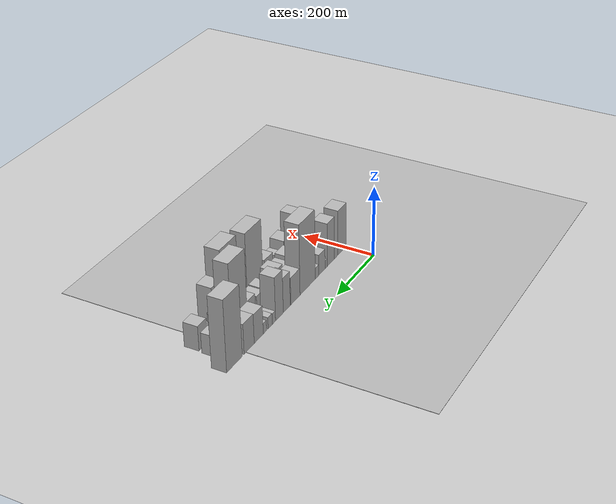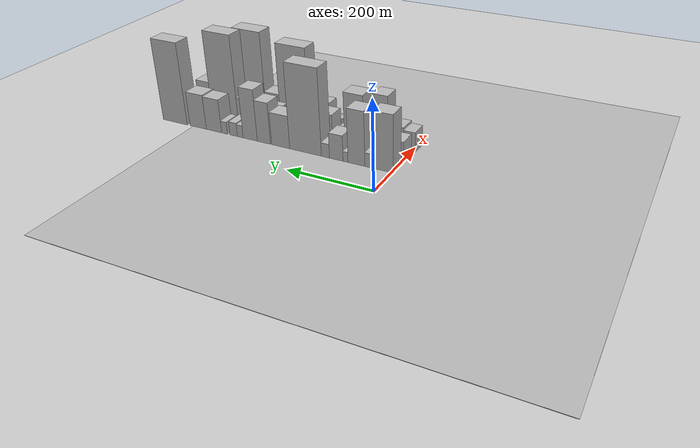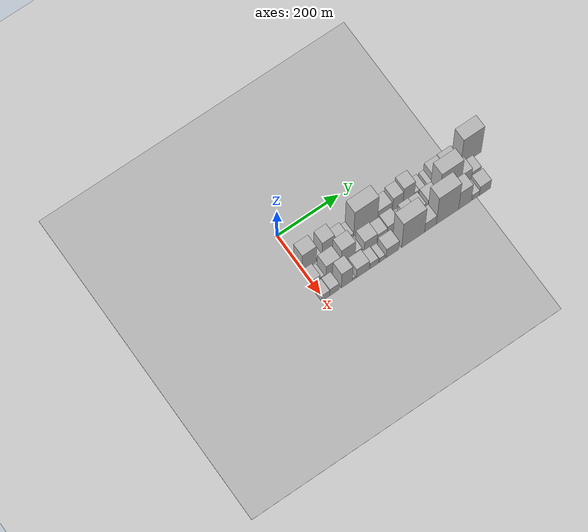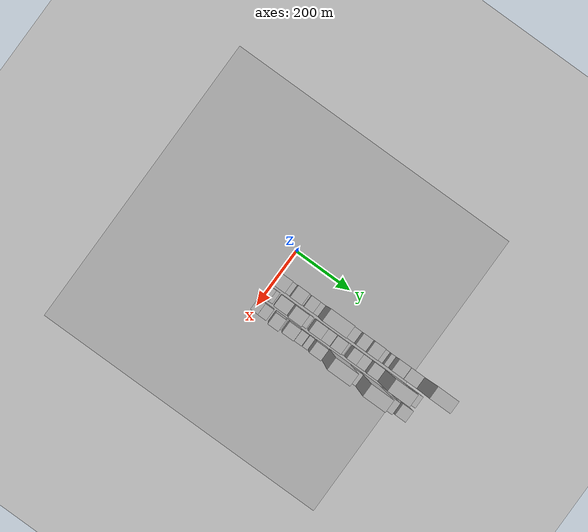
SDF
<sdf version="1.6">
 <world name="default">
  <include><name>ground_plane_1</name><uri>model://HANNAS_ground_plane</uri></include>
  <include>
   <name>ground_plane_2</name>
   <uri>model://HANNAS_ground_plane</uri>
   <pose>100 0 0  0 0 0</pose>
  </include>
  <model name="building_15">
   <static>1</static>
   <pose>100.0000 19.6133 0 0.000000 0.000000 0.000000</pose>
   <link name="link">
    <pose>0 0 66.00 0 0 0</pose>
    <collision name="collision"><geometry><box><size>40.0000 46.2009 132.0000</size></box></geometry></collision>
    <visual name="visual">
     <cast_shadows>0</cast_shadows>
     <geometry><box><size>40.0000 46.2009 132.0000</size></box></geometry>
     <material>
      <script>
       <uri>model://HANNAS_wall/materials/scripts</uri>
       <uri>model://HANNAS_wall/materials/textures</uri>
       <name>vrc/HANNAS_wall</name>
      </script>
     </material>
    </visual>
   </link>
  </model>
  <model name="building_16">
   <static>1</static>
   <pose>100.0000 51.9696 0 0.000000 0.000000 0.000000</pose>
   <link name="link">
    <pose>0 0 16.50 0 0 0</pose>
    <collision name="collision"><geometry><box><size>40.0000 18.5116 33.0000</size></box></geometry></collision>
    <visual name="visual">
     <cast_shadows>0</cast_shadows>
     <geometry><box><size>40.0000 18.5116 33.0000</size></box></geometry>
     <material>
      <script>
       <uri>model://HANNAS_wall/materials/scripts</uri>
       <uri>model://HANNAS_wall/materials/textures</uri>
       <name>vrc/HANNAS_wall</name>
      </script>
     </material>
    </visual>
   </link>
  </model>
  <model name="building_17">
   <static>1</static>
   <pose>100.0000 80.9882 0 0.000000 0.000000 0.000000</pose>
   <link name="link">
    <pose>0 0 63.00 0 0 0</pose>
    <collision name="collision"><geometry><box><size>40.0000 39.5256 126.0000</size></box></geometry></collision>
    <visual name="visual">
     <cast_shadows>0</cast_shadows>
     <geometry><box><size>40.0000 39.5256 126.0000</size></box></geometry>
     <material>
      <script>
       <uri>model://HANNAS_wall/materials/scripts</uri>
       <uri>model://HANNAS_wall/materials/textures</uri>
       <name>vrc/HANNAS_wall</name>
      </script>
     </material>
    </visual>
   </link>
  </model>
  <model name="building_18">
   <static>1</static>
   <pose>100.0000 106.6039 0 0.000000 0.000000 0.000000</pose>
   <link name="link">
    <pose>0 0 12.00 0 0 0</pose>
    <collision name="collision"><geometry><box><size>40.0000 11.7060 24.0000</size></box></geometry></collision>
    <visual name="visual">
     <cast_shadows>0</cast_shadows>
     <geometry><box><size>40.0000 11.7060 24.0000</size></box></geometry>
     <material>
      <script>
       <uri>model://HANNAS_wall/materials/scripts</uri>
       <uri>model://HANNAS_wall/materials/textures</uri>
       <name>vrc/HANNAS_wall</name>
      </script>
     </material>
    </visual>
   </link>
  </model>
  <model name="building_19">
   <static>1</static>
   <pose>100.0000 128.7293 0 0.000000 0.000000 0.000000</pose>
   <link name="link">
    <pose>0 0 30.00 0 0 0</pose>
    <collision name="collision"><geometry><box><size>40.0000 32.5449 60.0000</size></box></geometry></collision>
    <visual name="visual">
     <cast_shadows>0</cast_shadows>
     <geometry><box><size>40.0000 32.5449 60.0000</size></box></geometry>
     <material>
      <script>
       <uri>model://HANNAS_wall/materials/scripts</uri>
       <uri>model://HANNAS_wall/materials/textures</uri>
       <name>vrc/HANNAS_wall</name>
      </script>
     </material>
    </visual>
   </link>
  </model>
  <model name="building_20">
   <static>1</static>
   <pose>100.0000 154.8038 0 0.000000 0.000000 0.000000</pose>
   <link name="link">
    <pose>0 0 16.50 0 0 0</pose>
    <collision name="collision"><geometry><box><size>40.0000 19.6040 33.0000</size></box></geometry></collision>
    <visual name="visual">
     <cast_shadows>0</cast_shadows>
     <geometry><box><size>40.0000 19.6040 33.0000</size></box></geometry>
     <material>
      <script>
       <uri>model://HANNAS_wall/materials/scripts</uri>
       <uri>model://HANNAS_wall/materials/textures</uri>
       <name>vrc/HANNAS_wall</name>
      </script>
     </material>
    </visual>
   </link>
  </model>
  <model name="building_21">
   <static>1</static>
   <pose>100.0000 203.8623 0 0.000000 0.000000 0.000000</pose>
   <link name="link">
    <pose>0 0 100.50 0 0 0</pose>
    <collision name="collision"><geometry><box><size>40.0000 78.5130 201.0000</size></box></geometry></collision>
    <visual name="visual">
     <cast_shadows>0</cast_shadows>
     <geometry><box><size>40.0000 78.5130 201.0000</size></box></geometry>
     <material>
      <script>
       <uri>model://HANNAS_wall/materials/scripts</uri>
       <uri>model://HANNAS_wall/materials/textures</uri>
       <name>vrc/HANNAS_wall</name>
      </script>
     </material>
    </visual>
   </link>
  </model>
  <model name="building_22">
   <static>1</static>
   <pose>100.0000 266.0745 0 0.000000 0.000000 0.000000</pose>
   <link name="link">
    <pose>0 0 39.00 0 0 0</pose>
    <collision name="collision"><geometry><box><size>40.0000 45.9114 78.0000</size></box></geometry></collision>
    <visual name="visual">
     <cast_shadows>0</cast_shadows>
     <geometry><box><size>40.0000 45.9114 78.0000</size></box></geometry>
     <material>
      <script>
       <uri>model://HANNAS_wall/materials/scripts</uri>
       <uri>model://HANNAS_wall/materials/textures</uri>
       <name>vrc/HANNAS_wall</name>
      </script>
     </material>
    </visual>
   </link>
  </model>
  <model name="building_23">
   <static>1</static>
   <pose>100.0000 309.0728 0 0.000000 0.000000 0.000000</pose>
   <link name="link">
    <pose>0 0 49.50 0 0 0</pose>
    <collision name="collision"><geometry><box><size>40.0000 34.0853 99.0000</size></box></geometry></collision>
    <visual name="visual">
     <cast_shadows>0</cast_shadows>
     <geometry><box><size>40.0000 34.0853 99.0000</size></box></geometry>
     <material>
      <script>
       <uri>model://HANNAS_wall/materials/scripts</uri>
       <uri>model://HANNAS_wall/materials/textures</uri>
       <name>vrc/HANNAS_wall</name>
      </script>
     </material>
    </visual>
   </link>
  </model>
  <model name="building_24">
   <static>1</static>
   <pose>100.0000 344.8599 0 0.000000 0.000000 0.000000</pose>
   <link name="link">
    <pose>0 0 61.50 0 0 0</pose>
    <collision name="collision"><geometry><box><size>40.0000 37.4889 123.0000</size></box></geometry></collision>
    <visual name="visual">
     <cast_shadows>0</cast_shadows>
     <geometry><box><size>40.0000 37.4889 123.0000</size></box></geometry>
     <material>
      <script>
       <uri>model://HANNAS_wall/materials/scripts</uri>
       <uri>model://HANNAS_wall/materials/textures</uri>
       <name>vrc/HANNAS_wall</name>
      </script>
     </material>
    </visual>
   </link>
  </model>
  <model name="building_25">
   <static>1</static>
   <pose>100.0000 371.3807 0 0.000000 0.000000 0.000000</pose>
   <link name="link">
    <pose>0 0 15.00 0 0 0</pose>
    <collision name="collision"><geometry><box><size>40.0000 15.5526 30.0000</size></box></geometry></collision>
    <visual name="visual">
     <cast_shadows>0</cast_shadows>
     <geometry><box><size>40.0000 15.5526 30.0000</size></box></geometry>
     <material>
      <script>
       <uri>model://HANNAS_wall/materials/scripts</uri>
       <uri>model://HANNAS_wall/materials/textures</uri>
       <name>vrc/HANNAS_wall</name>
      </script>
     </material>
    </visual>
   </link>
  </model>
  <model name="building_26">
   <static>1</static>
   <pose>100.0000 389.0259 0 0.000000 0.000000 0.000000</pose>
   <link name="link">
    <pose>0 0 16.50 0 0 0</pose>
    <collision name="collision"><geometry><box><size>40.0000 19.7379 33.0000</size></box></geometry></collision>
    <visual name="visual">
     <cast_shadows>0</cast_shadows>
     <geometry><box><size>40.0000 19.7379 33.0000</size></box></geometry>
     <material>
      <script>
       <uri>model://HANNAS_wall/materials/scripts</uri>
       <uri>model://HANNAS_wall/materials/textures</uri>
       <name>vrc/HANNAS_wall</name>
      </script>
     </material>
    </visual>
   </link>
  </model>
  <model name="building_27">
   <static>1</static>
   <pose>100.0000 413.7134 0 0.000000 0.000000 0.000000</pose>
   <link name="link">
    <pose>0 0 15.00 0 0 0</pose>
    <collision name="collision"><geometry><box><size>40.0000 15.6372 30.0000</size></box></geometry></collision>
    <visual name="visual">
     <cast_shadows>0</cast_shadows>
     <geometry><box><size>40.0000 15.6372 30.0000</size></box></geometry>
     <material>
      <script>
       <uri>model://HANNAS_wall/materials/scripts</uri>
       <uri>model://HANNAS_wall/materials/textures</uri>
       <name>vrc/HANNAS_wall</name>
      </script>
     </material>
    </visual>
   </link>
  </model>
  <model name="building_28">
   <static>1</static>
   <pose>100.0000 442.4184 0 0.000000 0.000000 0.000000</pose>
   <link name="link">
    <pose>0 0 40.50 0 0 0</pose>
    <collision name="collision"><geometry><box><size>40.0000 41.7728 81.0000</size></box></geometry></collision>
    <visual name="visual">
     <cast_shadows>0</cast_shadows>
     <geometry><box><size>40.0000 41.7728 81.0000</size></box></geometry>
     <material>
      <script>
       <uri>model://HANNAS_wall/materials/scripts</uri>
       <uri>model://HANNAS_wall/materials/textures</uri>
       <name>vrc/HANNAS_wall</name>
      </script>
     </material>
    </visual>
   </link>
  </model>
  <model name="building_29">
   <static>1</static>
   <pose>100.0000 486.1446 0 0.000000 0.000000 0.000000</pose>
   <link name="link">
    <pose>0 0 42.00 0 0 0</pose>
    <collision name="collision"><geometry><box><size>40.0000 45.6794 84.0000</size></box></geometry></collision>
    <visual name="visual">
     <cast_shadows>0</cast_shadows>
     <geometry><box><size>40.0000 45.6794 84.0000</size></box></geometry>
     <material>
      <script>
       <uri>model://HANNAS_wall/materials/scripts</uri>
       <uri>model://HANNAS_wall/materials/textures</uri>
       <name>vrc/HANNAS_wall</name>
      </script>
     </material>
    </visual>
   </link>
  </model>
  <model name="building_30">
   <static>1</static>
   <pose>100.0000 551.2728 0 0.000000 0.000000 0.000000</pose>
   <link name="link">
    <pose>0 0 99.00 0 0 0</pose>
    <collision name="collision"><geometry><box><size>40.0000 68.5769 198.0000</size></box></geometry></collision>
    <visual name="visual">
     <cast_shadows>0</cast_shadows>
     <geometry><box><size>40.0000 68.5769 198.0000</size></box></geometry>
     <material>
      <script>
       <uri>model://HANNAS_wall/materials/scripts</uri>
       <uri>model://HANNAS_wall/materials/textures</uri>
       <name>vrc/HANNAS_wall</name>
      </script>
     </material>
    </visual>
   </link>
  </model>
  <model name="building_45">
   <static>1</static>
   <pose>149.0000 8.3008 0 0.000000 0.000000 0.000000</pose>
   <link name="link">
    <pose>0 0 24.00 0 0 0</pose>
    <collision name="collision"><geometry><box><size>40.0000 25.6407 48.0000</size></box></geometry></collision>
    <visual name="visual">
     <cast_shadows>0</cast_shadows>
     <geometry><box><size>40.0000 25.6407 48.0000</size></box></geometry>
     <material>
      <script>
       <uri>model://HANNAS_wall/materials/scripts</uri>
       <uri>model://HANNAS_wall/materials/textures</uri>
       <name>vrc/HANNAS_wall</name>
      </script>
     </material>
    </visual>
   </link>
  </model>
  <model name="building_46">
   <static>1</static>
   <pose>149.0000 27.7729 0 0.000000 0.000000 0.000000</pose>
   <link name="link">
    <pose>0 0 13.50 0 0 0</pose>
    <collision name="collision"><geometry><box><size>40.0000 13.3035 27.0000</size></box></geometry></collision>
    <visual name="visual">
     <cast_shadows>0</cast_shadows>
     <geometry><box><size>40.0000 13.3035 27.0000</size></box></geometry>
     <material>
      <script>
       <uri>model://HANNAS_wall/materials/scripts</uri>
       <uri>model://HANNAS_wall/materials/textures</uri>
       <name>vrc/HANNAS_wall</name>
      </script>
     </material>
    </visual>
   </link>
  </model>
  <model name="building_47">
   <static>1</static>
   <pose>149.0000 62.6030 0 0.000000 0.000000 0.000000</pose>
   <link name="link">
    <pose>0 0 43.50 0 0 0</pose>
    <collision name="collision"><geometry><box><size>40.0000 46.3568 87.0000</size></box></geometry></collision>
    <visual name="visual">
     <cast_shadows>0</cast_shadows>
     <geometry><box><size>40.0000 46.3568 87.0000</size></box></geometry>
     <material>
      <script>
       <uri>model://HANNAS_wall/materials/scripts</uri>
       <uri>model://HANNAS_wall/materials/textures</uri>
       <name>vrc/HANNAS_wall</name>
      </script>
     </material>
    </visual>
   </link>
  </model>
  <model name="building_48">
   <static>1</static>
   <pose>149.0000 111.6222 0 0.000000 0.000000 0.000000</pose>
   <link name="link">
    <pose>0 0 67.50 0 0 0</pose>
    <collision name="collision"><geometry><box><size>40.0000 45.6815 135.0000</size></box></geometry></collision>
    <visual name="visual">
     <cast_shadows>0</cast_shadows>
     <geometry><box><size>40.0000 45.6815 135.0000</size></box></geometry>
     <material>
      <script>
       <uri>model://HANNAS_wall/materials/scripts</uri>
       <uri>model://HANNAS_wall/materials/textures</uri>
       <name>vrc/HANNAS_wall</name>
      </script>
     </material>
    </visual>
   </link>
  </model>
  <model name="building_49">
   <static>1</static>
   <pose>149.0000 145.8154 0 0.000000 0.000000 0.000000</pose>
   <link name="link">
    <pose>0 0 21.00 0 0 0</pose>
    <collision name="collision"><geometry><box><size>40.0000 22.7050 42.0000</size></box></geometry></collision>
    <visual name="visual">
     <cast_shadows>0</cast_shadows>
     <geometry><box><size>40.0000 22.7050 42.0000</size></box></geometry>
     <material>
      <script>
       <uri>model://HANNAS_wall/materials/scripts</uri>
       <uri>model://HANNAS_wall/materials/textures</uri>
       <name>vrc/HANNAS_wall</name>
      </script>
     </material>
    </visual>
   </link>
  </model>
  <model name="building_50">
   <static>1</static>
   <pose>149.0000 185.4181 0 0.000000 0.000000 0.000000</pose>
   <link name="link">
    <pose>0 0 37.50 0 0 0</pose>
    <collision name="collision"><geometry><box><size>40.0000 42.5003 75.0000</size></box></geometry></collision>
    <visual name="visual">
     <cast_shadows>0</cast_shadows>
     <geometry><box><size>40.0000 42.5003 75.0000</size></box></geometry>
     <material>
      <script>
       <uri>model://HANNAS_wall/materials/scripts</uri>
       <uri>model://HANNAS_wall/materials/textures</uri>
       <name>vrc/HANNAS_wall</name>
      </script>
     </material>
    </visual>
   </link>
  </model>
  <model name="building_51">
   <static>1</static>
   <pose>149.0000 223.2690 0 0.000000 0.000000 0.000000</pose>
   <link name="link">
    <pose>0 0 31.50 0 0 0</pose>
    <collision name="collision"><geometry><box><size>40.0000 33.2016 63.0000</size></box></geometry></collision>
    <visual name="visual">
     <cast_shadows>0</cast_shadows>
     <geometry><box><size>40.0000 33.2016 63.0000</size></box></geometry>
     <material>
      <script>
       <uri>model://HANNAS_wall/materials/scripts</uri>
       <uri>model://HANNAS_wall/materials/textures</uri>
       <name>vrc/HANNAS_wall</name>
      </script>
     </material>
    </visual>
   </link>
  </model>
  <model name="building_52">
   <static>1</static>
   <pose>149.0000 259.0389 0 0.000000 0.000000 0.000000</pose>
   <link name="link">
    <pose>0 0 37.50 0 0 0</pose>
    <collision name="collision"><geometry><box><size>40.0000 38.3381 75.0000</size></box></geometry></collision>
    <visual name="visual">
     <cast_shadows>0</cast_shadows>
     <geometry><box><size>40.0000 38.3381 75.0000</size></box></geometry>
     <material>
      <script>
       <uri>model://HANNAS_wall/materials/scripts</uri>
       <uri>model://HANNAS_wall/materials/textures</uri>
       <name>vrc/HANNAS_wall</name>
      </script>
     </material>
    </visual>
   </link>
  </model>
  <model name="building_53">
   <static>1</static>
   <pose>149.0000 281.8146 0 0.000000 0.000000 0.000000</pose>
   <link name="link">
    <pose>0 0 7.50 0 0 0</pose>
    <collision name="collision"><geometry><box><size>40.0000 7.2133 15.0000</size></box></geometry></collision>
    <visual name="visual">
     <cast_shadows>0</cast_shadows>
     <geometry><box><size>40.0000 7.2133 15.0000</size></box></geometry>
     <material>
      <script>
       <uri>model://HANNAS_wall/materials/scripts</uri>
       <uri>model://HANNAS_wall/materials/textures</uri>
       <name>vrc/HANNAS_wall</name>
      </script>
     </material>
    </visual>
   </link>
  </model>
  <model name="building_54">
   <static>1</static>
   <pose>149.0000 290.1175 0 0.000000 0.000000 0.000000</pose>
   <link name="link">
    <pose>0 0 10.50 0 0 0</pose>
    <collision name="collision"><geometry><box><size>40.0000 9.3926 21.0000</size></box></geometry></collision>
    <visual name="visual">
     <cast_shadows>0</cast_shadows>
     <geometry><box><size>40.0000 9.3926 21.0000</size></box></geometry>
     <material>
      <script>
       <uri>model://HANNAS_wall/materials/scripts</uri>
       <uri>model://HANNAS_wall/materials/textures</uri>
       <name>vrc/HANNAS_wall</name>
      </script>
     </material>
    </visual>
   </link>
  </model>
  <model name="building_55">
   <static>1</static>
   <pose>149.0000 317.8023 0 0.000000 0.000000 0.000000</pose>
   <link name="link">
    <pose>0 0 30.00 0 0 0</pose>
    <collision name="collision"><geometry><box><size>40.0000 33.9770 60.0000</size></box></geometry></collision>
    <visual name="visual">
     <cast_shadows>0</cast_shadows>
     <geometry><box><size>40.0000 33.9770 60.0000</size></box></geometry>
     <material>
      <script>
       <uri>model://HANNAS_wall/materials/scripts</uri>
       <uri>model://HANNAS_wall/materials/textures</uri>
       <name>vrc/HANNAS_wall</name>
      </script>
     </material>
    </visual>
   </link>
  </model>
  <model name="building_56">
   <static>1</static>
   <pose>149.0000 350.3615 0 0.000000 0.000000 0.000000</pose>
   <link name="link">
    <pose>0 0 28.50 0 0 0</pose>
    <collision name="collision"><geometry><box><size>40.0000 31.1414 57.0000</size></box></geometry></collision>
    <visual name="visual">
     <cast_shadows>0</cast_shadows>
     <geometry><box><size>40.0000 31.1414 57.0000</size></box></geometry>
     <material>
      <script>
       <uri>model://HANNAS_wall/materials/scripts</uri>
       <uri>model://HANNAS_wall/materials/textures</uri>
       <name>vrc/HANNAS_wall</name>
      </script>
     </material>
    </visual>
   </link>
  </model>
  <model name="building_57">
   <static>1</static>
   <pose>149.0000 390.8647 0 0.000000 0.000000 0.000000</pose>
   <link name="link">
    <pose>0 0 34.50 0 0 0</pose>
    <collision name="collision"><geometry><box><size>40.0000 37.8648 69.0000</size></box></geometry></collision>
    <visual name="visual">
     <cast_shadows>0</cast_shadows>
     <geometry><box><size>40.0000 37.8648 69.0000</size></box></geometry>
     <material>
      <script>
       <uri>model://HANNAS_wall/materials/scripts</uri>
       <uri>model://HANNAS_wall/materials/textures</uri>
       <name>vrc/HANNAS_wall</name>
      </script>
     </material>
    </visual>
   </link>
  </model>
  <model name="building_58">
   <static>1</static>
   <pose>149.0000 445.7684 0 0.000000 0.000000 0.000000</pose>
   <link name="link">
    <pose>0 0 108.00 0 0 0</pose>
    <collision name="collision"><geometry><box><size>40.0000 71.9426 216.0000</size></box></geometry></collision>
    <visual name="visual">
     <cast_shadows>0</cast_shadows>
     <geometry><box><size>40.0000 71.9426 216.0000</size></box></geometry>
     <material>
      <script>
       <uri>model://HANNAS_wall/materials/scripts</uri>
       <uri>model://HANNAS_wall/materials/textures</uri>
       <name>vrc/HANNAS_wall</name>
      </script>
     </material>
    </visual>
   </link>
  </model>
  <model name="building_59">
   <static>1</static>
   <pose>149.0000 499.3610 0 0.000000 0.000000 0.000000</pose>
   <link name="link">
    <pose>0 0 46.50 0 0 0</pose>
    <collision name="collision"><geometry><box><size>40.0000 35.2428 93.0000</size></box></geometry></collision>
    <visual name="visual">
     <cast_shadows>0</cast_shadows>
     <geometry><box><size>40.0000 35.2428 93.0000</size></box></geometry>
     <material>
      <script>
       <uri>model://HANNAS_wall/materials/scripts</uri>
       <uri>model://HANNAS_wall/materials/textures</uri>
       <name>vrc/HANNAS_wall</name>
      </script>
     </material>
    </visual>
   </link>
  </model>
  <model name="building_60">
   <static>1</static>
   <pose>149.0000 532.4834 0 0.000000 0.000000 0.000000</pose>
   <link name="link">
    <pose>0 0 28.50 0 0 0</pose>
    <collision name="collision"><geometry><box><size>40.0000 31.0020 57.0000</size></box></geometry></collision>
    <visual name="visual">
     <cast_shadows>0</cast_shadows>
     <geometry><box><size>40.0000 31.0020 57.0000</size></box></geometry>
     <material>
      <script>
       <uri>model://HANNAS_wall/materials/scripts</uri>
       <uri>model://HANNAS_wall/materials/textures</uri>
       <name>vrc/HANNAS_wall</name>
      </script>
     </material>
    </visual>
   </link>
  </model>
  <model name="building_80">
   <static>1</static>
   <pose>198.0000 4.0115 0 0.000000 0.000000 0.000000</pose>
   <link name="link">
    <pose>0 0 24.00 0 0 0</pose>
    <collision name="collision"><geometry><box><size>40.0000 26.8633 48.0000</size></box></geometry></collision>
    <visual name="visual">
     <cast_shadows>0</cast_shadows>
     <geometry><box><size>40.0000 26.8633 48.0000</size></box></geometry>
     <material>
      <script>
       <uri>model://HANNAS_wall/materials/scripts</uri>
       <uri>model://HANNAS_wall/materials/textures</uri>
       <name>vrc/HANNAS_wall</name>
      </script>
     </material>
    </visual>
   </link>
  </model>
  <model name="building_81">
   <static>1</static>
   <pose>198.0000 32.6216 0 0.000000 0.000000 0.000000</pose>
   <link name="link">
    <pose>0 0 27.00 0 0 0</pose>
    <collision name="collision"><geometry><box><size>40.0000 30.3568 54.0000</size></box></geometry></collision>
    <visual name="visual">
     <cast_shadows>0</cast_shadows>
     <geometry><box><size>40.0000 30.3568 54.0000</size></box></geometry>
     <material>
      <script>
       <uri>model://HANNAS_wall/materials/scripts</uri>
       <uri>model://HANNAS_wall/materials/textures</uri>
       <name>vrc/HANNAS_wall</name>
      </script>
     </material>
    </visual>
   </link>
  </model>
  <model name="building_82">
   <static>1</static>
   <pose>198.0000 72.8680 0 0.000000 0.000000 0.000000</pose>
   <link name="link">
    <pose>0 0 60.00 0 0 0</pose>
    <collision name="collision"><geometry><box><size>40.0000 36.1361 120.0000</size></box></geometry></collision>
    <visual name="visual">
     <cast_shadows>0</cast_shadows>
     <geometry><box><size>40.0000 36.1361 120.0000</size></box></geometry>
     <material>
      <script>
       <uri>model://HANNAS_wall/materials/scripts</uri>
       <uri>model://HANNAS_wall/materials/textures</uri>
       <name>vrc/HANNAS_wall</name>
      </script>
     </material>
    </visual>
   </link>
  </model>
  <model name="building_83">
   <static>1</static>
   <pose>198.0000 95.5000 0 0.000000 0.000000 0.000000</pose>
   <link name="link">
    <pose>0 0 10.50 0 0 0</pose>
    <collision name="collision"><geometry><box><size>40.0000 9.1279 21.0000</size></box></geometry></collision>
    <visual name="visual">
     <cast_shadows>0</cast_shadows>
     <geometry><box><size>40.0000 9.1279 21.0000</size></box></geometry>
     <material>
      <script>
       <uri>model://HANNAS_wall/materials/scripts</uri>
       <uri>model://HANNAS_wall/materials/textures</uri>
       <name>vrc/HANNAS_wall</name>
      </script>
     </material>
    </visual>
   </link>
  </model>
  <model name="building_84">
   <static>1</static>
   <pose>198.0000 125.0189 0 0.000000 0.000000 0.000000</pose>
   <link name="link">
    <pose>0 0 36.00 0 0 0</pose>
    <collision name="collision"><geometry><box><size>40.0000 41.9098 72.0000</size></box></geometry></collision>
    <visual name="visual">
     <cast_shadows>0</cast_shadows>
     <geometry><box><size>40.0000 41.9098 72.0000</size></box></geometry>
     <material>
      <script>
       <uri>model://HANNAS_wall/materials/scripts</uri>
       <uri>model://HANNAS_wall/materials/textures</uri>
       <name>vrc/HANNAS_wall</name>
      </script>
     </material>
    </visual>
   </link>
  </model>
  <model name="building_85">
   <static>1</static>
   <pose>198.0000 162.3603 0 0.000000 0.000000 0.000000</pose>
   <link name="link">
    <pose>0 0 22.50 0 0 0</pose>
    <collision name="collision"><geometry><box><size>40.0000 26.7731 45.0000</size></box></geometry></collision>
    <visual name="visual">
     <cast_shadows>0</cast_shadows>
     <geometry><box><size>40.0000 26.7731 45.0000</size></box></geometry>
     <material>
      <script>
       <uri>model://HANNAS_wall/materials/scripts</uri>
       <uri>model://HANNAS_wall/materials/textures</uri>
       <name>vrc/HANNAS_wall</name>
      </script>
     </material>
    </visual>
   </link>
  </model>
  <model name="building_86">
   <static>1</static>
   <pose>198.0000 188.0313 0 0.000000 0.000000 0.000000</pose>
   <link name="link">
    <pose>0 0 18.00 0 0 0</pose>
    <collision name="collision"><geometry><box><size>40.0000 18.5689 36.0000</size></box></geometry></collision>
    <visual name="visual">
     <cast_shadows>0</cast_shadows>
     <geometry><box><size>40.0000 18.5689 36.0000</size></box></geometry>
     <material>
      <script>
       <uri>model://HANNAS_wall/materials/scripts</uri>
       <uri>model://HANNAS_wall/materials/textures</uri>
       <name>vrc/HANNAS_wall</name>
      </script>
     </material>
    </visual>
   </link>
  </model>
  <model name="building_87">
   <static>1</static>
   <pose>198.0000 222.1833 0 0.000000 0.000000 0.000000</pose>
   <link name="link">
    <pose>0 0 36.00 0 0 0</pose>
    <collision name="collision"><geometry><box><size>40.0000 41.7352 72.0000</size></box></geometry></collision>
    <visual name="visual">
     <cast_shadows>0</cast_shadows>
     <geometry><box><size>40.0000 41.7352 72.0000</size></box></geometry>
     <material>
      <script>
       <uri>model://HANNAS_wall/materials/scripts</uri>
       <uri>model://HANNAS_wall/materials/textures</uri>
       <name>vrc/HANNAS_wall</name>
      </script>
     </material>
    </visual>
   </link>
  </model>
  <model name="building_88">
   <static>1</static>
   <pose>198.0000 289.7257 0 0.000000 0.000000 0.000000</pose>
   <link name="link">
    <pose>0 0 97.50 0 0 0</pose>
    <collision name="collision"><geometry><box><size>40.0000 75.3495 195.0000</size></box></geometry></collision>
    <visual name="visual">
     <cast_shadows>0</cast_shadows>
     <geometry><box><size>40.0000 75.3495 195.0000</size></box></geometry>
     <material>
      <script>
       <uri>model://HANNAS_wall/materials/scripts</uri>
       <uri>model://HANNAS_wall/materials/textures</uri>
       <name>vrc/HANNAS_wall</name>
      </script>
     </material>
    </visual>
   </link>
  </model>
  <model name="building_89">
   <static>1</static>
   <pose>198.0000 346.6404 0 0.000000 0.000000 0.000000</pose>
   <link name="link">
    <pose>0 0 36.00 0 0 0</pose>
    <collision name="collision"><geometry><box><size>40.0000 38.4800 72.0000</size></box></geometry></collision>
    <visual name="visual">
     <cast_shadows>0</cast_shadows>
     <geometry><box><size>40.0000 38.4800 72.0000</size></box></geometry>
     <material>
      <script>
       <uri>model://HANNAS_wall/materials/scripts</uri>
       <uri>model://HANNAS_wall/materials/textures</uri>
       <name>vrc/HANNAS_wall</name>
      </script>
     </material>
    </visual>
   </link>
  </model>
  <model name="building_90">
   <static>1</static>
   <pose>198.0000 402.6195 0 0.000000 0.000000 0.000000</pose>
   <link name="link">
    <pose>0 0 106.50 0 0 0</pose>
    <collision name="collision"><geometry><box><size>40.0000 73.4781 213.0000</size></box></geometry></collision>
    <visual name="visual">
     <cast_shadows>0</cast_shadows>
     <geometry><box><size>40.0000 73.4781 213.0000</size></box></geometry>
     <material>
      <script>
       <uri>model://HANNAS_wall/materials/scripts</uri>
       <uri>model://HANNAS_wall/materials/textures</uri>
       <name>vrc/HANNAS_wall</name>
      </script>
     </material>
    </visual>
   </link>
  </model>
  <model name="building_91">
   <static>1</static>
   <pose>198.0000 460.2468 0 0.000000 0.000000 0.000000</pose>
   <link name="link">
    <pose>0 0 67.50 0 0 0</pose>
    <collision name="collision"><geometry><box><size>40.0000 41.7766 135.0000</size></box></geometry></collision>
    <visual name="visual">
     <cast_shadows>0</cast_shadows>
     <geometry><box><size>40.0000 41.7766 135.0000</size></box></geometry>
     <material>
      <script>
       <uri>model://HANNAS_wall/materials/scripts</uri>
       <uri>model://HANNAS_wall/materials/textures</uri>
       <name>vrc/HANNAS_wall</name>
      </script>
     </material>
    </visual>
   </link>
  </model>
  <model name="building_92">
   <static>1</static>
   <pose>198.0000 496.5347 0 0.000000 0.000000 0.000000</pose>
   <link name="link">
    <pose>0 0 21.00 0 0 0</pose>
    <collision name="collision"><geometry><box><size>40.0000 22.7993 42.0000</size></box></geometry></collision>
    <visual name="visual">
     <cast_shadows>0</cast_shadows>
     <geometry><box><size>40.0000 22.7993 42.0000</size></box></geometry>
     <material>
      <script>
       <uri>model://HANNAS_wall/materials/scripts</uri>
       <uri>model://HANNAS_wall/materials/textures</uri>
       <name>vrc/HANNAS_wall</name>
      </script>
     </material>
    </visual>
   </link>
  </model>
  <model name="building_93">
   <static>1</static>
   <pose>198.0000 526.5574 0 0.000000 0.000000 0.000000</pose>
   <link name="link">
    <pose>0 0 34.50 0 0 0</pose>
    <collision name="collision"><geometry><box><size>40.0000 37.2461 69.0000</size></box></geometry></collision>
    <visual name="visual">
     <cast_shadows>0</cast_shadows>
     <geometry><box><size>40.0000 37.2461 69.0000</size></box></geometry>
     <material>
      <script>
       <uri>model://HANNAS_wall/materials/scripts</uri>
       <uri>model://HANNAS_wall/materials/textures</uri>
       <name>vrc/HANNAS_wall</name>
      </script>
     </material>
    </visual>
   </link>
  </model>
 </world>
</sdf>
